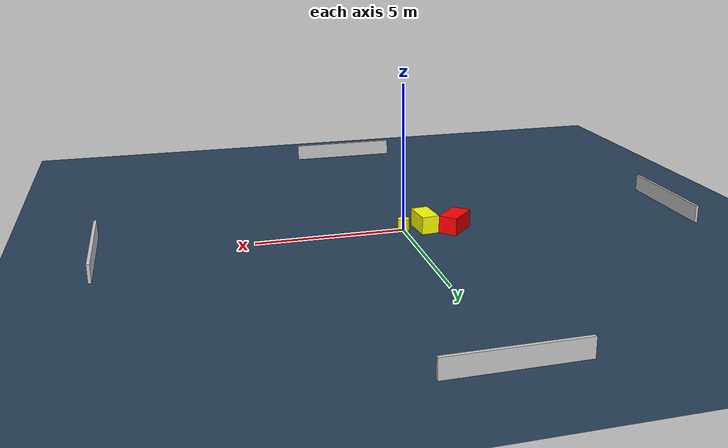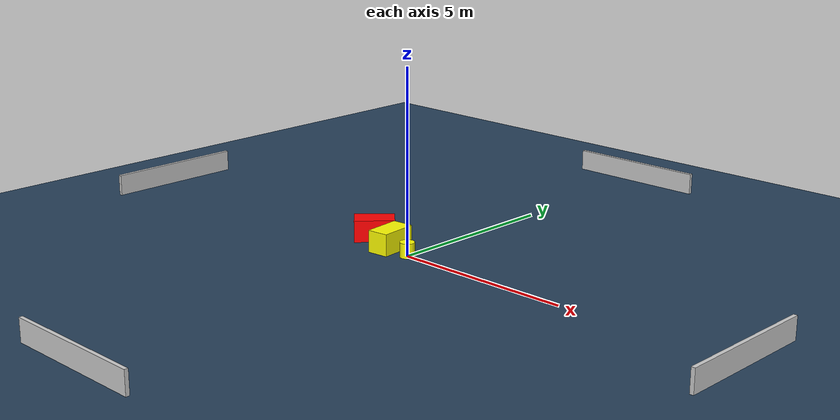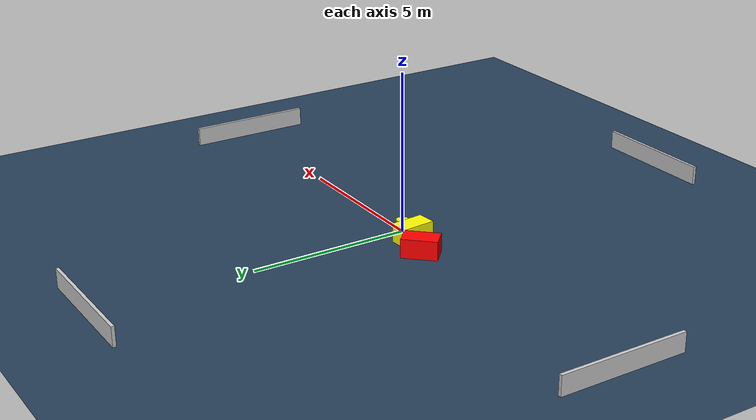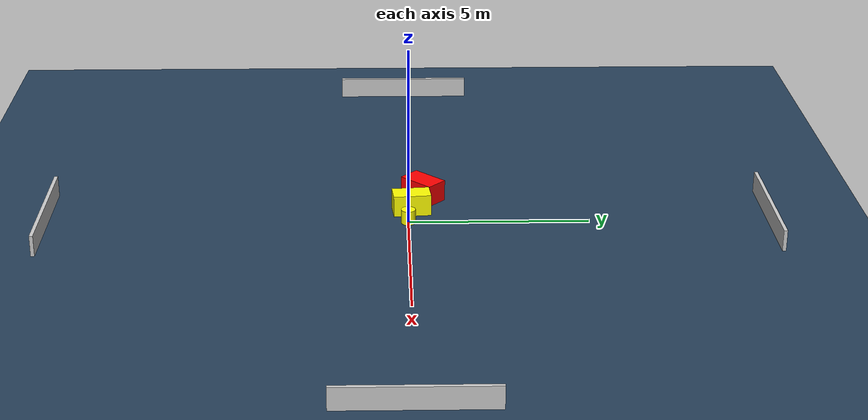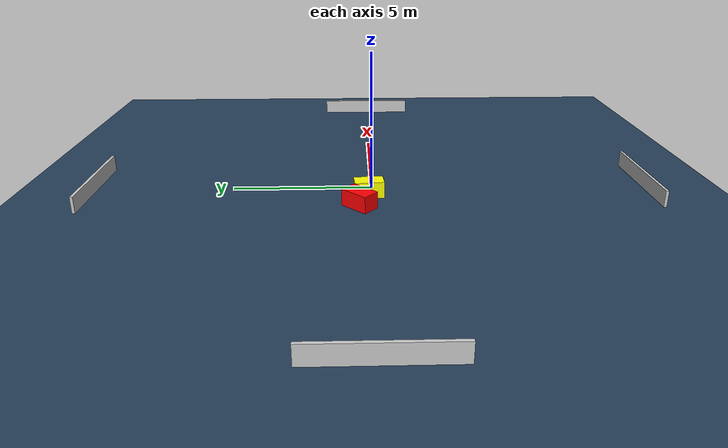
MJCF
<?xml version="1.0" ?>
<mujoco model="generated_environment">
  <option timestep="0.01" integrator="RK4" cone="elliptic"/>
  <default>
    <geom density="1"/>
  </default>
  <asset>
    <texture builtin="gradient" height="3072" name="skybox" rgb1="0.3 0.5 0.7" rgb2="0 0 0" type="skybox" width="512"/>
    <texture builtin="checker" height="300" name="groundplane" rgb1="0.2 0.3 0.4" rgb2="0.1 0.2 0.3" type="2d" width="300"/>
    <material name="groundplane" reflectance="0.2" texrepeat="5 5" texture="groundplane"/>
  </asset>
  <worldbody>
    <light dir="0 0 -1" directional="true" pos="0 0 1.5"/>
    <geom condim="3" friction="0.5 0.005 0.001" material="groundplane" name="floor" pos="0 0 0" size="0 0 0.05" type="plane"/>
    <body name="walls">
      <geom name="wall_1" condim="4" pos="-10.0 0.0 0.3" rgba="0.800000011920929 0.800000011920929 0.800000011920929 1.0" size="0.05 2.0 0.3" type="box"/>
      <geom name="wall_2" condim="4" pos="10.0 0.0 0.3" rgba="0.800000011920929 0.800000011920929 0.800000011920929 1.0" size="0.05 2.0 0.3" type="box"/>
      <geom name="wall_3" condim="4" pos="0.0 -10.0 0.3" rgba="0.800000011920929 0.800000011920929 0.800000011920929 1.0" size="2.0 0.05 0.3" type="box"/>
      <geom name="wall_4" condim="4" pos="0.0 10.0 0.3" rgba="0.800000011920929 0.800000011920929 0.800000011920929 1.0" size="2.0 0.05 0.3" type="box"/>
    </body>
    <body name="robot">
      <joint name="joint_x" type="slide" pos="0 0 0" axis="1 0 0"/>
      <joint name="joint_y" type="slide" pos="0 0 0" axis="0 1 0"/>
      <geom name="robot" type="cylinder" pos="0.0 0.0 0.2" size="0.2 0.2 0.0" mass="5.0" friction="1.0 0.005 0.0001" condim="4" rgba="1.0 1.0 0.0 1.0"/>
    </body>
    <body name="obstacle_1_movable">
      <geom name="obstacle_1_movable" condim="4" pos="-0.7201012430616835 0.09895745485141588 0.3" euler="0 0 95.25706458973023" friction="0.0 0.005 0.001" rgba="1.0 1.0 0.0 1.0" size="0.5232400435977611 0.29856333952678854 0.3" type="box" mass="0.1"/>
      <joint type="free"/>
    </body>
    <body name="obstacle_2_static">
      <geom name="obstacle_2_static" condim="4" pos="-1.6695423628776351 0.440126433748264 0.3" euler="0 0 316.16408952339555" friction="0.0 0.005 0.001" rgba="1.0 0.0 0.0 1.0" size="0.3219351353219398 0.5468774173742557 0.3" type="box"/>
    </body>
  </worldbody>
  <actuator>
    <motor name="actuator_x" joint="joint_x" gear="1" ctrlrange="-1 1"/>
    <motor name="actuator_y" joint="joint_y" gear="1" ctrlrange="-1 1"/>
  </actuator>
</mujoco>
